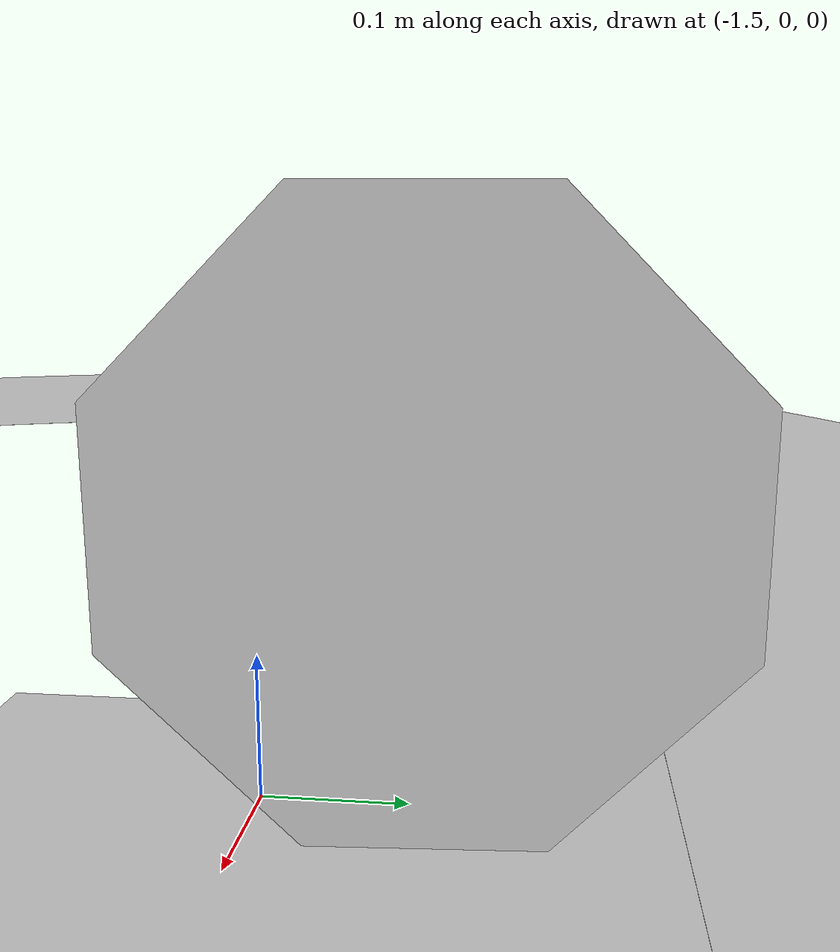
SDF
<sdf version="1.6">
 <world name="default">
  <model name="ground_plane">
   <static>1</static>
   <link name="link">
    <collision name="collision">
     <geometry><plane><normal>0 0 1</normal><size>100 100</size></plane></geometry>
     <surface><friction><ode><mu>100</mu><mu2>50</mu2></ode></friction></surface>
    </collision>
    <visual name="visual">
     <cast_shadows>0</cast_shadows>
     <geometry><plane><normal>0 0 1</normal><size>100 100</size></plane></geometry>
     <material>
      <script><uri>file://media/materials/scripts/gazebo.material</uri><name>Gazebo/Grey</name></script>
     </material>
    </visual>
   </link>
  </model>
  <gravity>0 0 -9.8</gravity>
  <magnetic_field>6e-06 2.3e-05 -4.2e-05</magnetic_field>
  <atmosphere type="adiabatic"/>
  <physics name="default_physics" default="0" type="ode">
   <max_step_size>0.001</max_step_size>
   <real_time_factor>1</real_time_factor>
   <real_time_update_rate>1000</real_time_update_rate>
  </physics>
  <scene><ambient>0.4 0.4 0.4 1</ambient><background>0.7 0.7 0.7 1</background><shadows>1</shadows></scene>
  <spherical_coordinates>
   <surface_model>EARTH_WGS84</surface_model>
   <latitude_deg>0</latitude_deg>
   <longitude_deg>0</longitude_deg>
   <elevation>0</elevation>
   <heading_deg>0</heading_deg>
  </spherical_coordinates>
  <light name="user_directional_light_0" type="directional">
   <pose>0.740558 -0.332252 1 0 -0 0</pose>
   <diffuse>0.5 0.5 0.5 1</diffuse>
   <specular>0.1 0.1 0.1 1</specular>
   <direction>0.1 0.1 -0.9</direction>
   <attenuation>
    <range>20</range>
    <constant>0.5</constant>
    <linear>0.01</linear>
    <quadratic>0.001</quadratic>
   </attenuation>
  </light>
  <model name="pista">
   <static>1</static>
   <link name="link">
    <collision name="collision">
     <geometry><mesh><uri>model://pista/meshes/pista.dae</uri><scale>1 1 1</scale></mesh></geometry>
    </collision>
    <visual name="mesh">
     <geometry><mesh><uri>model://pista/meshes/pista.dae</uri><scale>1 1 1</scale></mesh></geometry>
     <material>
      <script>
       <uri>model://pista/materials/scripts</uri>
       <uri>model://pista/materials/textures</uri>
       <name>vrc/pista</name>
      </script>
     </material>
    </visual>
   </link>
   <pose>-0.06985 0.078938 0 0 -0 0.004247</pose>
  </model>
  <model name="stop">
   <static>1</static>
   <link name="link">
    <collision name="collision">
     <geometry><mesh><uri>model://stop/meshes/stop.dae</uri><scale>1 1 1</scale></mesh></geometry>
    </collision>
    <visual name="mesh">
     <geometry><mesh><uri>model://stop/meshes/stop.dae</uri><scale>1 1 1</scale></mesh></geometry>
     <material>
      <script>
       <uri>model://stop/materials/scripts</uri>
       <uri>model://stop/materials/textures</uri>
       <name>vrc/stop</name>
      </script>
     </material>
    </visual>
   </link>
   <pose>-1.34564 0.120717 0.200614 3.14159 -1.5672 3.14159</pose>
  </model>
 </world>
</sdf>
